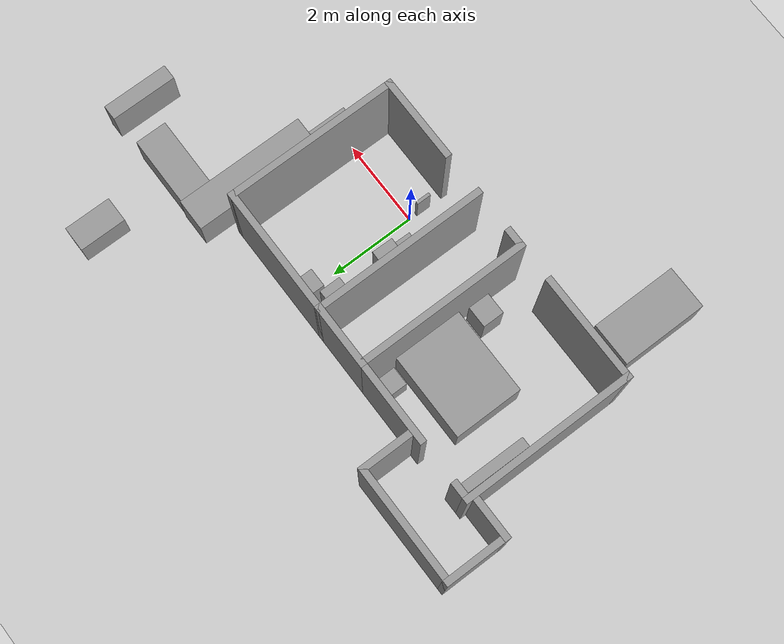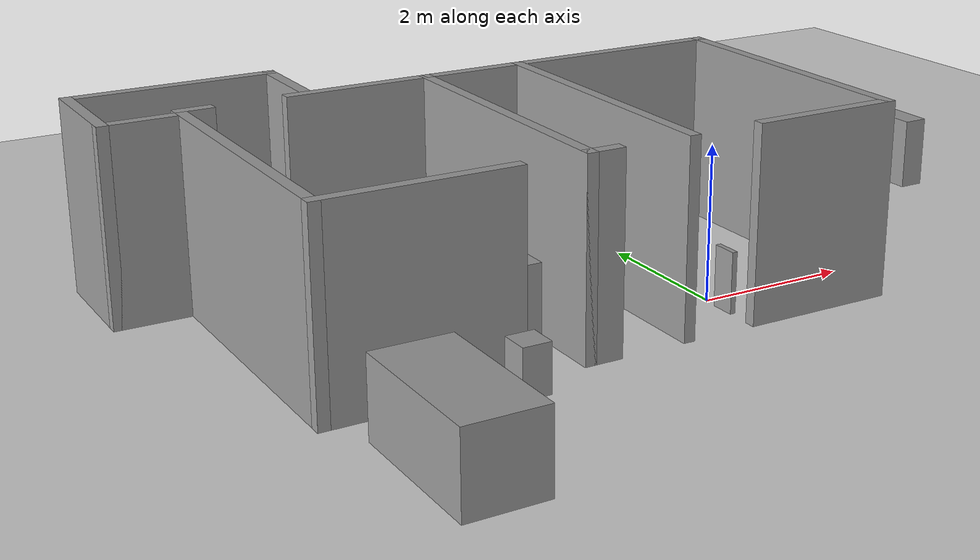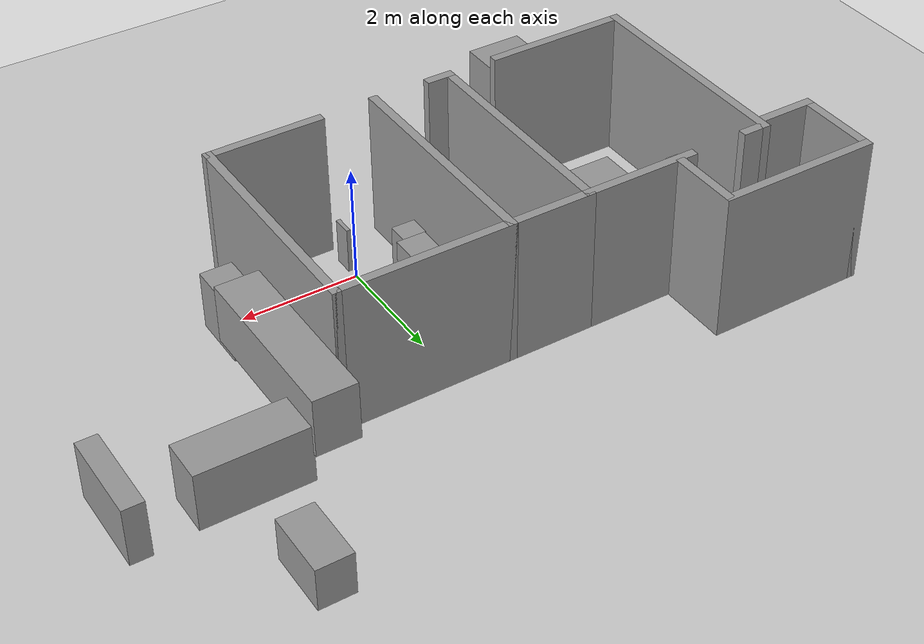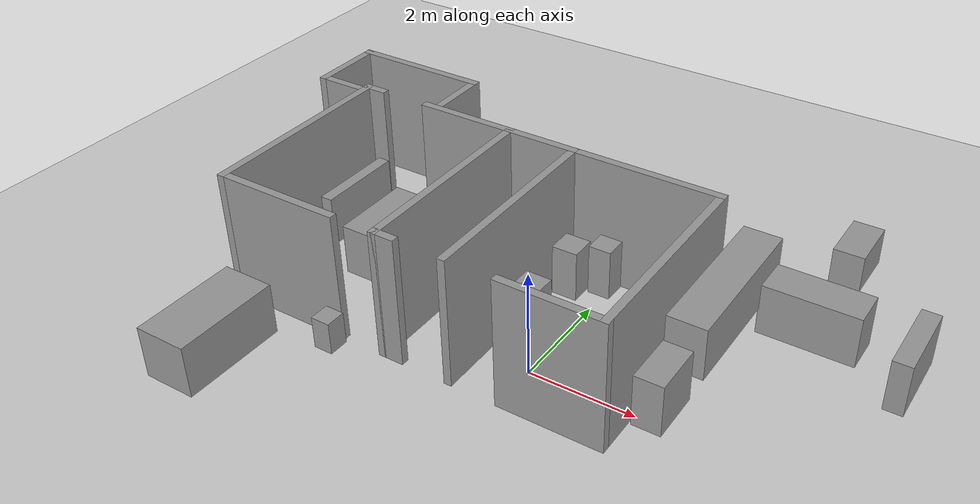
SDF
<sdf version="1.9">
 <world name="default">
  <model name="ground_plane">
   <static>true</static>
   <link name="link">
    <collision name="collision">
     <geometry><plane><normal>0 0 1</normal><size>100 100</size></plane></geometry>
     <surface><friction><ode><mu>100</mu><mu2>50</mu2></ode></friction></surface>
    </collision>
    <visual name="visual">
     <cast_shadows>false</cast_shadows>
     <geometry><plane><normal>0 0 1</normal><size>100 100</size></plane></geometry>
     <material>
      <script><uri>file://media/materials/scripts/gazebo.material</uri><name>Gazebo/Grey</name></script>
     </material>
    </visual>
   </link>
  </model>
  <model name="cma_escritorio">
   <pose>-1.8304 1.03024 0 0 0 0</pose>
   <link name="Wall_11">
    <collision name="Wall_11_Collision">
     <geometry><box><size>2 0.14999999999999999 2.5</size></box></geometry>
     <pose>0 0 1.25 0 0 0</pose>
    </collision>
    <visual name="Wall_11_Visual">
     <pose>0 0 1.25 0 0 0</pose>
     <geometry><box><size>2 0.14999999999999999 2.5</size></box></geometry>
     <material>
      <script><uri>file://media/materials/scripts/gazebo.material</uri><name>Gazebo/Grey</name></script>
      <ambient>1 1 1 1</ambient>
     </material>
    </visual>
    <pose>-1.3999999999999999 1.9299999999999999 0 0 0 3.1415899999999999</pose>
   </link>
   <link name="Wall_2">
    <collision name="Wall_2_Collision">
     <geometry><box><size>4 0.14999999999999999 2.5</size></box></geometry>
     <pose>0 0 1.25 0 0 0</pose>
    </collision>
    <visual name="Wall_2_Visual">
     <pose>0 0 1.25 0 0 0</pose>
     <geometry><box><size>4 0.14999999999999999 2.5</size></box></geometry>
     <material>
      <script><uri>file://media/materials/scripts/gazebo.material</uri><name>Gazebo/Grey</name></script>
      <ambient>1 1 1 1</ambient>
     </material>
    </visual>
    <pose>0.875 0.0050000000000000001 0 0 0 1.5708</pose>
   </link>
   <link name="Wall_25">
    <collision name="Wall_25_Collision">
     <geometry><box><size>2.5 0.14999999999999999 2.5</size></box></geometry>
     <pose>0 0 1.25 0 0 0</pose>
    </collision>
    <visual name="Wall_25_Visual">
     <pose>0 0 1.25 0 0 0</pose>
     <geometry><box><size>2.5 0.14999999999999999 2.5</size></box></geometry>
     <material>
      <script><uri>file://media/materials/scripts/gazebo.material</uri><name>Gazebo/Grey</name></script>
      <ambient>1 1 1 1</ambient>
     </material>
    </visual>
    <pose>-2.5499999999999998 -1.9299999999999999 0 0 0 3.1415899999999999</pose>
   </link>
   <link name="Wall_26">
    <collision name="Wall_26_Collision">
     <geometry><box><size>4 0.14999999999999999 2.5</size></box></geometry>
     <pose>0 0 1.25 0 0 0</pose>
    </collision>
    <visual name="Wall_26_Visual">
     <pose>0 0 1.25 0 0 0</pose>
     <geometry><box><size>4 0.14999999999999999 2.5</size></box></geometry>
     <material>
      <script><uri>file://media/materials/scripts/gazebo.material</uri><name>Gazebo/Grey</name></script>
      <ambient>1 1 1 1</ambient>
     </material>
    </visual>
    <pose>-3.7250000000000001 -0.0050000000000000001 0 0 0 1.5708</pose>
   </link>
   <link name="Wall_27">
    <collision name="Wall_27_Collision">
     <geometry><box><size>0.5 0.14999999999999999 2.5</size></box></geometry>
     <pose>0 0 1.25 0 0 0</pose>
    </collision>
    <visual name="Wall_27_Visual">
     <pose>0 0 1.25 0 0 0</pose>
     <geometry><box><size>0.5 0.14999999999999999 2.5</size></box></geometry>
     <material>
      <script><uri>file://media/materials/scripts/gazebo.material</uri><name>Gazebo/Grey</name></script>
      <ambient>1 1 1 1</ambient>
     </material>
    </visual>
    <pose>-3.5499999999999998 1.9199999999999999 0 0 0 0</pose>
   </link>
   <link name="Wall_3">
    <collision name="Wall_3_Collision">
     <geometry><box><size>3 0.14999999999999999 2.5</size></box></geometry>
     <pose>0 0 1.25 0 0 0</pose>
    </collision>
    <visual name="Wall_3_Visual">
     <pose>0 0 1.25 0 0 0</pose>
     <geometry><box><size>3 0.14999999999999999 2.5</size></box></geometry>
     <material>
      <script><uri>file://media/materials/scripts/gazebo.material</uri><name>Gazebo/Grey</name></script>
      <ambient>1 1 1 1</ambient>
     </material>
    </visual>
    <pose>2.2999999999999998 1.9299999999999999 0 0 0 0</pose>
   </link>
   <link name="Wall_4">
    <collision name="Wall_4_Collision">
     <geometry><box><size>4 0.14999999999999999 2.5</size></box></geometry>
     <pose>0 0 1.25 0 0 0</pose>
    </collision>
    <visual name="Wall_4_Visual">
     <pose>0 0 1.25 0 0 0</pose>
     <geometry><box><size>4 0.14999999999999999 2.5</size></box></geometry>
     <material>
      <script><uri>file://media/materials/scripts/gazebo.material</uri><name>Gazebo/Grey</name></script>
      <ambient>1 1 1 1</ambient>
     </material>
    </visual>
    <pose>3.7250000000000001 0.0050000000000000001 0 0 0 -1.5708</pose>
   </link>
   <link name="Wall_5">
    <collision name="Wall_5_Collision">
     <geometry><box><size>2 0.14999999999999999 2.5</size></box></geometry>
     <pose>0 0 1.25 0 0 0</pose>
    </collision>
    <visual name="Wall_5_Visual">
     <pose>0 0 1.25 0 0 0</pose>
     <geometry><box><size>2 0.14999999999999999 2.5</size></box></geometry>
     <material>
      <script><uri>file://media/materials/scripts/gazebo.material</uri><name>Gazebo/Grey</name></script>
      <ambient>1 1 1 1</ambient>
     </material>
    </visual>
    <pose>2.7999999999999998 -1.9199999999999999 0 0 0 3.1415899999999999</pose>
   </link>
   <link name="Wall_7">
    <collision name="Wall_7_Collision">
     <geometry><box><size>1.5 0.14999999999999999 2.5</size></box></geometry>
     <pose>0 0 1.25 0 0 0</pose>
    </collision>
    <visual name="Wall_7_Visual">
     <pose>0 0 1.25 0 0 0</pose>
     <geometry><box><size>1.5 0.14999999999999999 2.5</size></box></geometry>
     <material>
      <script><uri>file://media/materials/scripts/gazebo.material</uri><name>Gazebo/Grey</name></script>
      <ambient>1 1 1 1</ambient>
     </material>
    </visual>
    <pose>0.20000000000000001 1.9299999999999999 0 0 0 3.1415899999999999</pose>
   </link>
   <link name="Wall_8">
    <collision name="Wall_8_Collision">
     <geometry><box><size>4 0.14999999999999999 2.5</size></box></geometry>
     <pose>0 0 1.25 0 0 0</pose>
    </collision>
    <visual name="Wall_8_Visual">
     <pose>0 0 1.25 0 0 0</pose>
     <geometry><box><size>4 0.14999999999999999 2.5</size></box></geometry>
     <material>
      <script><uri>file://media/materials/scripts/gazebo.material</uri><name>Gazebo/Grey</name></script>
      <ambient>1 1 1 1</ambient>
     </material>
    </visual>
    <pose>-0.47499999999999998 0.0050000000000000001 0 0 0 -1.5708</pose>
   </link>
   <link name="Wall_9">
    <collision name="Wall_9_Collision">
     <geometry><box><size>0.5 0.14999999999999999 2.5</size></box></geometry>
     <pose>0 0 1.25 0 0 0</pose>
    </collision>
    <visual name="Wall_9_Visual">
     <pose>0 0 1.25 0 0 0</pose>
     <geometry><box><size>0.5 0.14999999999999999 2.5</size></box></geometry>
     <material>
      <script><uri>file://media/materials/scripts/gazebo.material</uri><name>Gazebo/Grey</name></script>
      <ambient>1 1 1 1</ambient>
     </material>
    </visual>
    <pose>-0.29999999999999999 -1.9199999999999999 0 0 0 0</pose>
   </link>
   <static>true</static>
  </model>
  <model name="cma_banheiro">
   <pose>-5.2292800000000002 3.4870999999999999 0 0 0 0</pose>
   <link name="Wall_0">
    <collision name="Wall_0_Collision">
     <geometry><box><size>1 0.14999999999999999 2.5</size></box></geometry>
     <pose>0 0 1.25 0 0 0</pose>
    </collision>
    <visual name="Wall_0_Visual">
     <pose>0 0 1.25 0 0 0</pose>
     <geometry><box><size>1 0.14999999999999999 2.5</size></box></geometry>
     <material>
      <script><uri>file://media/materials/scripts/gazebo.material</uri><name>Gazebo/Grey</name></script>
      <ambient>1 1 1 1</ambient>
     </material>
    </visual>
    <pose>-0.875 -0.67500000000000004 0 0 0 3.1415899999999999</pose>
   </link>
   <link name="Wall_1">
    <collision name="Wall_1_Collision">
     <geometry><box><size>1.5 0.14999999999999999 2.5</size></box></geometry>
     <pose>0 0 1.25 0 0 0</pose>
    </collision>
    <visual name="Wall_1_Visual">
     <pose>0 0 1.25 0 0 0</pose>
     <geometry><box><size>1.5 0.14999999999999999 2.5</size></box></geometry>
     <material>
      <script><uri>file://media/materials/scripts/gazebo.material</uri><name>Gazebo/Grey</name></script>
      <ambient>1 1 1 1</ambient>
     </material>
    </visual>
    <pose>-1.3 0 0 0 0 1.5708</pose>
   </link>
   <link name="Wall_2">
    <collision name="Wall_2_Collision">
     <geometry><box><size>2.75 0.14999999999999999 2.5</size></box></geometry>
     <pose>0 0 1.25 0 0 0</pose>
    </collision>
    <visual name="Wall_2_Visual">
     <pose>0 0 1.25 0 0 0</pose>
     <geometry><box><size>2.75 0.14999999999999999 2.5</size></box></geometry>
     <material>
      <script><uri>file://media/materials/scripts/gazebo.material</uri><name>Gazebo/Grey</name></script>
      <ambient>1 1 1 1</ambient>
     </material>
    </visual>
    <pose>0 0.67500000000000004 0 0 0 0</pose>
   </link>
   <link name="Wall_4">
    <collision name="Wall_4_Collision">
     <geometry><box><size>1.25 0.14999999999999999 2.5</size></box></geometry>
     <pose>0 0 1.25 0 0 0</pose>
    </collision>
    <visual name="Wall_4_Visual">
     <pose>0 0 1.25 0 0 0</pose>
     <geometry><box><size>1.25 0.14999999999999999 2.5</size></box></geometry>
     <material>
      <script><uri>file://media/materials/scripts/gazebo.material</uri><name>Gazebo/Grey</name></script>
      <ambient>1 1 1 1</ambient>
     </material>
    </visual>
    <pose>1.3 0.125 0 0 0 -1.5708</pose>
   </link>
   <static>true</static>
  </model>
  <model name="cma_gaveteiro_pequeno_0">
   <link name="link_0">
    <pose>0.25617400000000001 1.2505500000000001 0.5 0 0 0</pose>
    <inertial>
     <mass>0.18718599999999999</mass>
     <inertia>
      <ixx>0.018509999999999999</ixx>
      <ixy>0</ixy>
      <ixz>0</ixz>
      <iyy>0.018527600000000002</iyy>
      <iyz>0</iyz>
      <izz>0.00583981</izz>
     </inertia>
    </inertial>
    <visual name="visual">
     <geometry><box><size>0.43331700000000001 0.432002 1</size></box></geometry>
     <material>
      <lighting>true</lighting>
      <script><uri>file://media/materials/scripts/gazebo.material</uri><name>Gazebo/Grey</name></script>
      <ambient>0.300000012 0.300000012 0.300000012 1</ambient>
      <diffuse>0.699999988 0.699999988 0.699999988 1</diffuse>
      <specular>0.00999999978 0.00999999978 0.00999999978 1</specular>
      <emissive>0 0 0 1</emissive>
     </material>
    </visual>
    <collision name="collision">
     <geometry><box><size>0.43331700000000001 0.432002 1</size></box></geometry>
     <surface>
      <friction>
       <ode><mu>1</mu><mu2>1</mu2><fdir1>0 0 0</fdir1><slip1>0</slip1><slip2>0</slip2></ode>
       <torsional>
        <coefficient>1</coefficient>
        <patch_radius>0</patch_radius>
        <surface_radius>0</surface_radius>
        <use_patch_radius>true</use_patch_radius>
        <ode><slip>0</slip></ode>
       </torsional>
      </friction>
      <bounce><restitution_coefficient>0</restitution_coefficient><threshold>1000000</threshold></bounce>
      <contact>
       <collide_without_contact>false</collide_without_contact>
       <collide_without_contact_bitmask>1</collide_without_contact_bitmask>
       <collide_bitmask>1</collide_bitmask>
       <ode>
        <soft_cfm>0</soft_cfm>
        <soft_erp>0.20000000000000001</soft_erp>
        <kp>10000000000000</kp>
        <kd>1</kd>
        <max_vel>0.01</max_vel>
        <min_depth>0</min_depth>
       </ode>
       <bullet>
        <split_impulse>true</split_impulse>
        <split_impulse_penetration_threshold>-0.01</split_impulse_penetration_threshold>
        <soft_cfm>0</soft_cfm>
        <soft_erp>0.20000000000000001</soft_erp>
        <kp>10000000000000</kp>
        <kd>1</kd>
       </bullet>
      </contact>
     </surface>
    </collision>
   </link>
   <static>false</static>
   <pose>-0.33607799999999999 1.39513 -6.9999999999999999e-06 6.999999999999999e-06 5.169878828456423e-26 -8.2999999999999998e-05</pose>
  </model>
  <model name="cma_gaveteiro">
   <link name="link_0">
    <pose>0 3.9999999999999998e-06 0 0 0 0</pose>
    <inertial>
     <mass>0.245086</mass>
     <inertia>
      <ixx>0.025418</ixx>
      <ixy>0</ixy>
      <ixz>0</ixz>
      <iyy>0.025441100000000001</iyy>
      <iyz>0</iyz>
      <izz>0.010011300000000001</izz>
     </inertia>
    </inertial>
    <visual name="visual">
     <geometry><box><size>0.49565700000000001 0.49449100000000001 1</size></box></geometry>
     <material>
      <lighting>true</lighting>
      <script><uri>file://media/materials/scripts/gazebo.material</uri><name>Gazebo/Grey</name></script>
      <ambient>0.300000012 0.300000012 0.300000012 1</ambient>
      <diffuse>0.699999988 0.699999988 0.699999988 1</diffuse>
      <specular>0.00999999978 0.00999999978 0.00999999978 1</specular>
      <emissive>0 0 0 1</emissive>
     </material>
    </visual>
    <collision name="collision">
     <geometry><box><size>0.49565700000000001 0.49449100000000001 1</size></box></geometry>
     <surface>
      <friction>
       <ode><mu>1</mu><mu2>1</mu2><fdir1>0 0 0</fdir1><slip1>0</slip1><slip2>0</slip2></ode>
       <torsional>
        <coefficient>1</coefficient>
        <patch_radius>0</patch_radius>
        <surface_radius>0</surface_radius>
        <use_patch_radius>true</use_patch_radius>
        <ode><slip>0</slip></ode>
       </torsional>
      </friction>
      <bounce><restitution_coefficient>0</restitution_coefficient><threshold>1000000</threshold></bounce>
      <contact>
       <collide_without_contact>false</collide_without_contact>
       <collide_without_contact_bitmask>1</collide_without_contact_bitmask>
       <collide_bitmask>1</collide_bitmask>
       <ode>
        <soft_cfm>0</soft_cfm>
        <soft_erp>0.20000000000000001</soft_erp>
        <kp>10000000000000</kp>
        <kd>1</kd>
        <max_vel>0.01</max_vel>
        <min_depth>0</min_depth>
       </ode>
       <bullet>
        <split_impulse>true</split_impulse>
        <split_impulse_penetration_threshold>-0.01</split_impulse_penetration_threshold>
        <soft_cfm>0</soft_cfm>
        <soft_erp>0.20000000000000001</soft_erp>
        <kp>10000000000000</kp>
        <kd>1</kd>
       </bullet>
      </contact>
     </surface>
    </collision>
   </link>
   <static>false</static>
   <pose>-0.59198799999999996 2.32619 0.49999700000000002 6.000000000000001e-06 -6.000000000000001e-06 0.00053200000000000014</pose>
  </model>
  <model name="cma_gaveteiro_0">
   <link name="link_0">
    <pose>0 3.9999999999999998e-06 0 0 0 0</pose>
    <inertial>
     <mass>0.245086</mass>
     <inertia>
      <ixx>0.025418</ixx>
      <ixy>0</ixy>
      <ixz>0</ixz>
      <iyy>0.025441100000000001</iyy>
      <iyz>0</iyz>
      <izz>0.010011300000000001</izz>
     </inertia>
    </inertial>
    <visual name="visual">
     <geometry><box><size>0.49565700000000001 0.49449100000000001 1</size></box></geometry>
     <material>
      <lighting>true</lighting>
      <script><uri>file://media/materials/scripts/gazebo.material</uri><name>Gazebo/Grey</name></script>
      <ambient>0.300000012 0.300000012 0.300000012 1</ambient>
      <diffuse>0.699999988 0.699999988 0.699999988 1</diffuse>
      <specular>0.00999999978 0.00999999978 0.00999999978 1</specular>
      <emissive>0 0 0 1</emissive>
     </material>
    </visual>
    <collision name="collision">
     <geometry><box><size>0.49565700000000001 0.49449100000000001 1</size></box></geometry>
     <surface>
      <friction>
       <ode><mu>1</mu><mu2>1</mu2><fdir1>0 0 0</fdir1><slip1>0</slip1><slip2>0</slip2></ode>
       <torsional>
        <coefficient>1</coefficient>
        <patch_radius>0</patch_radius>
        <surface_radius>0</surface_radius>
        <use_patch_radius>true</use_patch_radius>
        <ode><slip>0</slip></ode>
       </torsional>
      </friction>
      <bounce><restitution_coefficient>0</restitution_coefficient><threshold>1000000</threshold></bounce>
      <contact>
       <collide_without_contact>false</collide_without_contact>
       <collide_without_contact_bitmask>1</collide_without_contact_bitmask>
       <collide_bitmask>1</collide_bitmask>
       <ode>
        <soft_cfm>0</soft_cfm>
        <soft_erp>0.20000000000000001</soft_erp>
        <kp>10000000000000</kp>
        <kd>1</kd>
        <max_vel>0.01</max_vel>
        <min_depth>0</min_depth>
       </ode>
       <bullet>
        <split_impulse>true</split_impulse>
        <split_impulse_penetration_threshold>-0.01</split_impulse_penetration_threshold>
        <soft_cfm>0</soft_cfm>
        <soft_erp>0.20000000000000001</soft_erp>
        <kp>10000000000000</kp>
        <kd>1</kd>
       </bullet>
      </contact>
     </surface>
    </collision>
   </link>
   <static>false</static>
   <pose>-0.57788200000000001 0.98407100000000003 0.49999900000000003 -9.9999999999999995e-07 5.0000000000000004e-06 -0.014332000000000001</pose>
  </model>
  <model name="cma_sofa2">
   <link name="link_0">
    <pose>-4.6680000000000001 -2.0060099999999998 0.5 0 0 0</pose>
    <inertial>
     <mass>1.9868300000000001</mass>
     <inertia>
      <ixx>0.81914900000000002</ixx>
      <ixy>0</ixy>
      <ixz>0</ixz>
      <iyy>0.33113799999999999</iyy>
      <iyz>0</iyz>
      <izz>0.81914900000000002</izz>
     </inertia>
    </inertial>
    <visual name="visual">
     <geometry><box><size>1 1.98682 1</size></box></geometry>
     <material>
      <lighting>true</lighting>
      <script><uri>file://media/materials/scripts/gazebo.material</uri><name>Gazebo/Grey</name></script>
      <ambient>0.300000012 0.300000012 0.300000012 1</ambient>
      <diffuse>0.699999988 0.699999988 0.699999988 1</diffuse>
      <specular>0.00999999978 0.00999999978 0.00999999978 1</specular>
      <emissive>0 0 0 1</emissive>
     </material>
    </visual>
    <collision name="collision">
     <geometry><box><size>1 1.98682 1</size></box></geometry>
     <surface>
      <friction>
       <ode><mu>1</mu><mu2>1</mu2><fdir1>0 0 0</fdir1><slip1>0</slip1><slip2>0</slip2></ode>
       <torsional>
        <coefficient>1</coefficient>
        <patch_radius>0</patch_radius>
        <surface_radius>0</surface_radius>
        <use_patch_radius>true</use_patch_radius>
        <ode><slip>0</slip></ode>
       </torsional>
      </friction>
      <bounce><restitution_coefficient>0</restitution_coefficient><threshold>1000000</threshold></bounce>
      <contact>
       <collide_without_contact>false</collide_without_contact>
       <collide_without_contact_bitmask>1</collide_without_contact_bitmask>
       <collide_bitmask>1</collide_bitmask>
       <ode>
        <soft_cfm>0</soft_cfm>
        <soft_erp>0.20000000000000001</soft_erp>
        <kp>10000000000000</kp>
        <kd>1</kd>
        <max_vel>0.01</max_vel>
        <min_depth>0</min_depth>
       </ode>
       <bullet>
        <split_impulse>true</split_impulse>
        <split_impulse_penetration_threshold>-0.01</split_impulse_penetration_threshold>
        <soft_cfm>0</soft_cfm>
        <soft_erp>0.20000000000000001</soft_erp>
        <kp>10000000000000</kp>
        <kd>1</kd>
       </bullet>
      </contact>
     </surface>
    </collision>
   </link>
   <static>false</static>
   <pose>-0.095333000000000001 -0.40780699999999998 -1.2999999999999999e-05 -2.0194839173748778e-28 3.0000000000000001e-06 9.9999999999999995e-07</pose>
  </model>
  <model name="cma_apoio_s">
   <link name="link_1">
    <pose>-1.9376 -3.4655100000000001 0.5 0 0 0</pose>
    <inertial>
     <mass>0.087846300000000002</mass>
     <inertia>
      <ixx>0.0039269600000000002</ixx>
      <ixy>0</ixy>
      <ixz>0</ixz>
      <iyy>0.0038535599999999998</iyy>
      <iyz>0</iyz>
      <izz>0.0020587000000000001</izz>
     </inertia>
    </inertial>
    <visual name="visual">
     <geometry><box><size>0.36822300000000002 0.38159199999999999 0.62511799999999995</size></box></geometry>
     <material>
      <lighting>true</lighting>
      <script><uri>file://media/materials/scripts/gazebo.material</uri><name>Gazebo/Grey</name></script>
      <ambient>0.300000012 0.300000012 0.300000012 1</ambient>
      <diffuse>0.699999988 0.699999988 0.699999988 1</diffuse>
      <specular>0.00999999978 0.00999999978 0.00999999978 1</specular>
      <emissive>0 0 0 1</emissive>
     </material>
    </visual>
    <collision name="collision">
     <geometry><box><size>0.36822300000000002 0.38159199999999999 0.62511799999999995</size></box></geometry>
     <surface>
      <friction>
       <ode><mu>1</mu><mu2>1</mu2><fdir1>0 0 0</fdir1><slip1>0</slip1><slip2>0</slip2></ode>
       <torsional>
        <coefficient>1</coefficient>
        <patch_radius>0</patch_radius>
        <surface_radius>0</surface_radius>
        <use_patch_radius>true</use_patch_radius>
        <ode><slip>0</slip></ode>
       </torsional>
      </friction>
      <bounce><restitution_coefficient>0</restitution_coefficient><threshold>1000000</threshold></bounce>
      <contact>
       <collide_without_contact>false</collide_without_contact>
       <collide_without_contact_bitmask>1</collide_without_contact_bitmask>
       <collide_bitmask>1</collide_bitmask>
       <ode>
        <soft_cfm>0</soft_cfm>
        <soft_erp>0.20000000000000001</soft_erp>
        <kp>10000000000000</kp>
        <kd>1</kd>
        <max_vel>0.01</max_vel>
        <min_depth>0</min_depth>
       </ode>
       <bullet>
        <split_impulse>true</split_impulse>
        <split_impulse_penetration_threshold>-0.01</split_impulse_penetration_threshold>
        <soft_cfm>0</soft_cfm>
        <soft_erp>0.20000000000000001</soft_erp>
        <kp>10000000000000</kp>
        <kd>1</kd>
       </bullet>
      </contact>
     </surface>
    </collision>
   </link>
   <static>false</static>
   <pose>-1.3079000000000001 2.27034 -0.187469 -1.2000000000000002e-05 -9.0000000000000002e-06 -0.0011650000000000005</pose>
  </model>
  <model name="cma_cama_c_0">
   <link name="link_0">
    <pose>5.0000000000000004e-06 -3.9999999999999998e-06 0 0 0 0</pose>
    <inertial>
     <mass>3.1835800000000001</mass>
     <inertia>
      <ixx>0.93486199999999997</ixx>
      <ixy>0</ixy>
      <ixz>0</ixz>
      <iyy>1.3306899999999999</iyy>
      <iyz>0</iyz>
      <izz>1.7349600000000001</izz>
     </inertia>
    </inertial>
    <visual name="visual">
     <geometry><box><size>2.0039400000000001 1.58866 1</size></box></geometry>
     <material>
      <lighting>true</lighting>
      <script><uri>file://media/materials/scripts/gazebo.material</uri><name>Gazebo/Grey</name></script>
      <ambient>0.300000012 0.300000012 0.300000012 1</ambient>
      <diffuse>0.699999988 0.699999988 0.699999988 1</diffuse>
      <specular>0.00999999978 0.00999999978 0.00999999978 1</specular>
      <emissive>0 0 0 1</emissive>
     </material>
    </visual>
    <collision name="collision">
     <geometry><box><size>2.0039400000000001 1.58866 1</size></box></geometry>
     <surface>
      <friction>
       <ode><mu>1</mu><mu2>1</mu2><fdir1>0 0 0</fdir1><slip1>0</slip1><slip2>0</slip2></ode>
       <torsional>
        <coefficient>1</coefficient>
        <patch_radius>0</patch_radius>
        <surface_radius>0</surface_radius>
        <use_patch_radius>true</use_patch_radius>
        <ode><slip>0</slip></ode>
       </torsional>
      </friction>
      <bounce><restitution_coefficient>0</restitution_coefficient><threshold>1000000</threshold></bounce>
      <contact>
       <collide_without_contact>false</collide_without_contact>
       <collide_without_contact_bitmask>1</collide_without_contact_bitmask>
       <collide_bitmask>1</collide_bitmask>
       <ode>
        <soft_cfm>0</soft_cfm>
        <soft_erp>0.20000000000000001</soft_erp>
        <kp>10000000000000</kp>
        <kd>1</kd>
        <max_vel>0.01</max_vel>
        <min_depth>0</min_depth>
       </ode>
       <bullet>
        <split_impulse>true</split_impulse>
        <split_impulse_penetration_threshold>-0.01</split_impulse_penetration_threshold>
        <soft_cfm>0</soft_cfm>
        <soft_erp>0.20000000000000001</soft_erp>
        <kp>10000000000000</kp>
        <kd>1</kd>
       </bullet>
      </contact>
     </surface>
    </collision>
   </link>
   <static>false</static>
   <pose>-3.3823799999999999 1.3878699999999999 0.5 0 0 -2.0000000000000003e-06</pose>
  </model>
  <model name="cma_bau_s_0">
   <link name="link_1">
    <pose>0.109594 0.27229300000000001 0 0 0 0</pose>
    <inertial>
     <mass>0.12547900000000001</mass>
     <inertia>
      <ixx>0.0064194300000000003</ixx>
      <ixy>0</ixy>
      <ixz>0</ixz>
      <iyy>0.0059753999999999996</iyy>
      <iyz>0</iyz>
      <izz>0.0042208499999999999</izz>
     </inertia>
    </inertial>
    <visual name="visual">
     <geometry><box><size>0.42496400000000001 0.47228300000000001 0.62511799999999995</size></box></geometry>
     <material>
      <lighting>true</lighting>
      <script><uri>file://media/materials/scripts/gazebo.material</uri><name>Gazebo/Grey</name></script>
      <ambient>0.300000012 0.300000012 0.300000012 1</ambient>
      <diffuse>0.699999988 0.699999988 0.699999988 1</diffuse>
      <specular>0.00999999978 0.00999999978 0.00999999978 1</specular>
      <emissive>0 0 0 1</emissive>
     </material>
    </visual>
    <collision name="collision">
     <geometry><box><size>0.42496400000000001 0.47228300000000001 0.62511799999999995</size></box></geometry>
     <surface>
      <friction>
       <ode><mu>1</mu><mu2>1</mu2><fdir1>0 0 0</fdir1><slip1>0</slip1><slip2>0</slip2></ode>
       <torsional>
        <coefficient>1</coefficient>
        <patch_radius>0</patch_radius>
        <surface_radius>0</surface_radius>
        <use_patch_radius>true</use_patch_radius>
        <ode><slip>0</slip></ode>
       </torsional>
      </friction>
      <bounce><restitution_coefficient>0</restitution_coefficient><threshold>1000000</threshold></bounce>
      <contact>
       <collide_without_contact>false</collide_without_contact>
       <collide_without_contact_bitmask>1</collide_without_contact_bitmask>
       <collide_bitmask>1</collide_bitmask>
       <ode>
        <soft_cfm>0</soft_cfm>
        <soft_erp>0.20000000000000001</soft_erp>
        <kp>10000000000000</kp>
        <kd>1</kd>
        <max_vel>0.01</max_vel>
        <min_depth>0</min_depth>
       </ode>
       <bullet>
        <split_impulse>true</split_impulse>
        <split_impulse_penetration_threshold>-0.01</split_impulse_penetration_threshold>
        <soft_cfm>0</soft_cfm>
        <soft_erp>0.20000000000000001</soft_erp>
        <kp>10000000000000</kp>
        <kd>1</kd>
       </bullet>
      </contact>
     </surface>
    </collision>
   </link>
   <static>false</static>
   <pose>-2.7651500000000002 2.2427899999999998 0.31255899999999998 0 0 -0.00012999999999999999</pose>
  </model>
  <model name="cma_gaveteiro_1">
   <link name="link_0">
    <pose>0 3.9999999999999998e-06 0 0 0 0</pose>
    <inertial>
     <mass>0.245086</mass>
     <inertia>
      <ixx>0.025418</ixx>
      <ixy>0</ixy>
      <ixz>0</ixz>
      <iyy>0.025441100000000001</iyy>
      <iyz>0</iyz>
      <izz>0.010011300000000001</izz>
     </inertia>
    </inertial>
    <visual name="visual">
     <geometry><box><size>0.49565700000000001 0.49449100000000001 1</size></box></geometry>
     <material>
      <lighting>true</lighting>
      <script><uri>file://media/materials/scripts/gazebo.material</uri><name>Gazebo/Grey</name></script>
      <ambient>0.300000012 0.300000012 0.300000012 1</ambient>
      <diffuse>0.699999988 0.699999988 0.699999988 1</diffuse>
      <specular>0.00999999978 0.00999999978 0.00999999978 1</specular>
      <emissive>0 0 0 1</emissive>
     </material>
    </visual>
    <collision name="collision">
     <geometry><box><size>0.49565700000000001 0.49449100000000001 1</size></box></geometry>
     <surface>
      <friction>
       <ode><mu>1</mu><mu2>1</mu2><fdir1>0 0 0</fdir1><slip1>0</slip1><slip2>0</slip2></ode>
       <torsional>
        <coefficient>1</coefficient>
        <patch_radius>0</patch_radius>
        <surface_radius>0</surface_radius>
        <use_patch_radius>true</use_patch_radius>
        <ode><slip>0</slip></ode>
       </torsional>
      </friction>
      <bounce><restitution_coefficient>0</restitution_coefficient><threshold>1000000</threshold></bounce>
      <contact>
       <collide_without_contact>false</collide_without_contact>
       <collide_without_contact_bitmask>1</collide_without_contact_bitmask>
       <collide_bitmask>1</collide_bitmask>
       <ode>
        <soft_cfm>0</soft_cfm>
        <soft_erp>0.20000000000000001</soft_erp>
        <kp>10000000000000</kp>
        <kd>1</kd>
        <max_vel>0.01</max_vel>
        <min_depth>0</min_depth>
       </ode>
       <bullet>
        <split_impulse>true</split_impulse>
        <split_impulse_penetration_threshold>-0.01</split_impulse_penetration_threshold>
        <soft_cfm>0</soft_cfm>
        <soft_erp>0.20000000000000001</soft_erp>
        <kp>10000000000000</kp>
        <kd>1</kd>
       </bullet>
      </contact>
     </surface>
    </collision>
   </link>
   <static>false</static>
   <pose>-2.68858 0.13162699999999999 0.499998 7.9999999999999996e-06 1.0339757656912846e-25 -0.00020699999999999999</pose>
  </model>
  <model name="cma_armario_6">
   <link name="link_0">
    <pose>1.3215699999999999 0.88517800000000002 0.5 0 0 0</pose>
    <inertial>
     <mass>0.40237600000000001</mass>
     <inertia>
      <ixx>0.0353686</ixx>
      <ixy>0</ixy>
      <ixz>0</ixz>
      <iyy>0.13261600000000001</iyy>
      <iyz>0</iyz>
      <izz>0.100922</izz>
     </inertia>
    </inertial>
    <visual name="visual">
     <geometry><box><size>1.7187699999999999 0.234069 1</size></box></geometry>
     <material>
      <lighting>true</lighting>
      <script><uri>file://media/materials/scripts/gazebo.material</uri><name>Gazebo/Grey</name></script>
      <ambient>0.300000012 0.300000012 0.300000012 1</ambient>
      <diffuse>0.699999988 0.699999988 0.699999988 1</diffuse>
      <specular>0.00999999978 0.00999999978 0.00999999978 1</specular>
      <emissive>0 0 0 1</emissive>
     </material>
    </visual>
    <collision name="collision">
     <geometry><box><size>1.7187699999999999 0.234069 1</size></box></geometry>
     <surface>
      <friction>
       <ode><mu>1</mu><mu2>1</mu2><fdir1>0 0 0</fdir1><slip1>0</slip1><slip2>0</slip2></ode>
       <torsional>
        <coefficient>1</coefficient>
        <patch_radius>0</patch_radius>
        <surface_radius>0</surface_radius>
        <use_patch_radius>true</use_patch_radius>
        <ode><slip>0</slip></ode>
       </torsional>
      </friction>
      <bounce><restitution_coefficient>0</restitution_coefficient><threshold>1000000</threshold></bounce>
      <contact>
       <collide_without_contact>false</collide_without_contact>
       <collide_without_contact_bitmask>1</collide_without_contact_bitmask>
       <collide_bitmask>1</collide_bitmask>
       <ode>
        <soft_cfm>0</soft_cfm>
        <soft_erp>0.20000000000000001</soft_erp>
        <kp>10000000000000</kp>
        <kd>1</kd>
        <max_vel>0.01</max_vel>
        <min_depth>0</min_depth>
       </ode>
       <bullet>
        <split_impulse>true</split_impulse>
        <split_impulse_penetration_threshold>-0.01</split_impulse_penetration_threshold>
        <soft_cfm>0</soft_cfm>
        <soft_erp>0.20000000000000001</soft_erp>
        <kp>10000000000000</kp>
        <kd>1</kd>
       </bullet>
      </contact>
     </surface>
    </collision>
   </link>
   <static>false</static>
   <pose>-4.3864900000000002 0.68753299999999995 9.9999999999999995e-07 -2.0000000000000003e-06 0 1.5659099999999999</pose>
  </model>
  <model name="cma_gaveteiro_pequeno_e">
   <link name="link_1">
    <pose>9.9999999999999995e-07 -3.0000000000000001e-06 0 0 0 0</pose>
    <inertial>
     <mass>0.14553199999999999</mass>
     <inertia>
      <ixx>0.0136813</ixx>
      <ixy>0</ixy>
      <ixz>0</ixz>
      <iyy>0.0141327</iyy>
      <iyz>0</iyz>
      <izz>0.0035586599999999999</izz>
     </inertia>
    </inertial>
    <visual name="visual">
     <geometry><box><size>0.40660000000000002 0.35791800000000001 1</size></box></geometry>
     <material>
      <lighting>true</lighting>
      <script><uri>file://media/materials/scripts/gazebo.material</uri><name>Gazebo/Grey</name></script>
      <ambient>0.300000012 0.300000012 0.300000012 1</ambient>
      <diffuse>0.699999988 0.699999988 0.699999988 1</diffuse>
      <specular>0.00999999978 0.00999999978 0.00999999978 1</specular>
      <emissive>0 0 0 1</emissive>
     </material>
    </visual>
    <collision name="collision">
     <geometry><box><size>0.40660000000000002 0.35791800000000001 1</size></box></geometry>
     <surface>
      <friction>
       <ode><mu>1</mu><mu2>1</mu2><fdir1>0 0 0</fdir1><slip1>0</slip1><slip2>0</slip2></ode>
       <torsional>
        <coefficient>1</coefficient>
        <patch_radius>0</patch_radius>
        <surface_radius>0</surface_radius>
        <use_patch_radius>true</use_patch_radius>
        <ode><slip>0</slip></ode>
       </torsional>
      </friction>
      <bounce><restitution_coefficient>0</restitution_coefficient><threshold>1000000</threshold></bounce>
      <contact>
       <collide_without_contact>false</collide_without_contact>
       <collide_without_contact_bitmask>1</collide_without_contact_bitmask>
       <collide_bitmask>1</collide_bitmask>
       <ode>
        <soft_cfm>0</soft_cfm>
        <soft_erp>0.20000000000000001</soft_erp>
        <kp>10000000000000</kp>
        <kd>1</kd>
        <max_vel>0.01</max_vel>
        <min_depth>0</min_depth>
       </ode>
       <bullet>
        <split_impulse>true</split_impulse>
        <split_impulse_penetration_threshold>-0.01</split_impulse_penetration_threshold>
        <soft_cfm>0</soft_cfm>
        <soft_erp>0.20000000000000001</soft_erp>
        <kp>10000000000000</kp>
        <kd>1</kd>
       </bullet>
      </contact>
     </surface>
    </collision>
   </link>
   <static>false</static>
   <pose>-0.65294700000000006 0.55890300000000004 0.49999900000000003 3.0000000000000001e-06 6.999999999999999e-06 -0.014330000000000004</pose>
  </model>
  <model name="cma_pe_mesa2">
   <link name="link_0">
    <pose>-9.9999999999999995e-07 0 0 0 0 0</pose>
    <inertial>
     <mass>0.0184993</mass>
     <inertia>
      <ixx>0.0011378499999999999</ixx>
      <ixy>0</ixy>
      <ixz>0</ixz>
      <iyy>0.00097356799999999996</iyy>
      <iyz>0</iyz>
      <izz>0.000179385</izz>
     </inertia>
    </inertial>
    <visual name="visual">
     <geometry><box><size>0.070004999999999998 0.33385999999999999 0.79159199999999996</size></box></geometry>
     <material>
      <lighting>true</lighting>
      <script><uri>file://media/materials/scripts/gazebo.material</uri><name>Gazebo/Grey</name></script>
      <ambient>0.300000012 0.300000012 0.300000012 1</ambient>
      <diffuse>0.699999988 0.699999988 0.699999988 1</diffuse>
      <specular>0.00999999978 0.00999999978 0.00999999978 1</specular>
      <emissive>0 0 0 1</emissive>
     </material>
    </visual>
    <collision name="collision">
     <geometry><box><size>0.070004999999999998 0.33385999999999999 0.79159199999999996</size></box></geometry>
     <surface>
      <friction>
       <ode><mu>1</mu><mu2>1</mu2><fdir1>0 0 0</fdir1><slip1>0</slip1><slip2>0</slip2></ode>
       <torsional>
        <coefficient>1</coefficient>
        <patch_radius>0</patch_radius>
        <surface_radius>0</surface_radius>
        <use_patch_radius>true</use_patch_radius>
        <ode><slip>0</slip></ode>
       </torsional>
      </friction>
      <bounce><restitution_coefficient>0</restitution_coefficient><threshold>1000000</threshold></bounce>
      <contact>
       <collide_without_contact>false</collide_without_contact>
       <collide_without_contact_bitmask>1</collide_without_contact_bitmask>
       <collide_bitmask>1</collide_bitmask>
       <ode>
        <soft_cfm>0</soft_cfm>
        <soft_erp>0.20000000000000001</soft_erp>
        <kp>10000000000000</kp>
        <kd>1</kd>
        <max_vel>0.01</max_vel>
        <min_depth>0</min_depth>
       </ode>
       <bullet>
        <split_impulse>true</split_impulse>
        <split_impulse_penetration_threshold>-0.01</split_impulse_penetration_threshold>
        <soft_cfm>0</soft_cfm>
        <soft_erp>0.20000000000000001</soft_erp>
        <kp>10000000000000</kp>
        <kd>1</kd>
       </bullet>
      </contact>
     </surface>
    </collision>
   </link>
   <static>false</static>
   <pose>0.0086339999999999993 -0.34209400000000001 0.39579599999999998 0 0 -0.00079200000000000006</pose>
  </model>
  <model name="cma_armario_coz_190x70cm">
   <link name="link_0">
    <pose>5.2095799999999999 2.97661 0.5 0 0 -1.5706800000000001</pose>
    <inertial>
     <mass>1.2966</mass>
     <inertia>
      <ixx>0.45447700000000002</ixx>
      <ixy>0</ixy>
      <ixz>0</ixz>
      <iyy>0.16470599999999999</iyy>
      <iyz>0</iyz>
      <izz>0.403084</izz>
     </inertia>
    </inertial>
    <visual name="visual">
     <geometry><box><size>0.72418400000000005 1.7905800000000001 1</size></box></geometry>
     <material>
      <lighting>true</lighting>
      <script><uri>file://media/materials/scripts/gazebo.material</uri><name>Gazebo/Grey</name></script>
      <ambient>0.300000012 0.300000012 0.300000012 1</ambient>
      <diffuse>0.699999988 0.699999988 0.699999988 1</diffuse>
      <specular>0.00999999978 0.00999999978 0.00999999978 1</specular>
      <emissive>0 0 0 1</emissive>
     </material>
    </visual>
    <collision name="collision">
     <geometry><box><size>0.72418400000000005 1.7905800000000001 1</size></box></geometry>
     <surface>
      <friction>
       <ode><mu>1</mu><mu2>1</mu2><fdir1>0 0 0</fdir1><slip1>0</slip1><slip2>0</slip2></ode>
       <torsional>
        <coefficient>1</coefficient>
        <patch_radius>0</patch_radius>
        <surface_radius>0</surface_radius>
        <use_patch_radius>true</use_patch_radius>
        <ode><slip>0</slip></ode>
       </torsional>
      </friction>
      <bounce><restitution_coefficient>0</restitution_coefficient><threshold>1000000</threshold></bounce>
      <contact>
       <collide_without_contact>false</collide_without_contact>
       <collide_without_contact_bitmask>1</collide_without_contact_bitmask>
       <collide_bitmask>1</collide_bitmask>
       <ode>
        <soft_cfm>0</soft_cfm>
        <soft_erp>0.20000000000000001</soft_erp>
        <kp>10000000000000</kp>
        <kd>1</kd>
        <max_vel>0.01</max_vel>
        <min_depth>0</min_depth>
       </ode>
       <bullet>
        <split_impulse>true</split_impulse>
        <split_impulse_penetration_threshold>-0.01</split_impulse_penetration_threshold>
        <soft_cfm>0</soft_cfm>
        <soft_erp>0.20000000000000001</soft_erp>
        <kp>10000000000000</kp>
        <kd>1</kd>
       </bullet>
      </contact>
     </surface>
    </collision>
   </link>
   <model name="cma_armario_coz_100x50cm">
    <link name="link_0">
     <pose>-3.0000000000000001e-06 -3.0000000000000001e-06 0 0 0 0</pose>
     <inertial>
      <mass>0.53619300000000003</mass>
      <inertia>
       <ixx>0.089365700000000006</ixx>
       <ixy>0</ixy>
       <ixz>0</ixz>
       <iyy>0.057529299999999998</iyy>
       <iyz>0</iyz>
       <izz>0.057529299999999998</izz>
      </inertia>
     </inertial>
     <visual name="visual">
      <geometry><box><size>0.53619300000000003 1 1</size></box></geometry>
      <material>
       <lighting>true</lighting>
       <script><uri>file://media/materials/scripts/gazebo.material</uri><name>Gazebo/Grey</name></script>
       <ambient>0.300000012 0.300000012 0.300000012 1</ambient>
       <diffuse>0.699999988 0.699999988 0.699999988 1</diffuse>
       <specular>0.00999999978 0.00999999978 0.00999999978 1</specular>
       <emissive>0 0 0 1</emissive>
      </material>
     </visual>
     <collision name="collision">
      <geometry><box><size>0.53619300000000003 1 1</size></box></geometry>
      <surface>
       <friction>
        <ode><mu>1</mu><mu2>1</mu2><fdir1>0 0 0</fdir1><slip1>0</slip1><slip2>0</slip2></ode>
        <torsional>
         <coefficient>1</coefficient>
         <patch_radius>0</patch_radius>
         <surface_radius>0</surface_radius>
         <use_patch_radius>true</use_patch_radius>
         <ode><slip>0</slip></ode>
        </torsional>
       </friction>
       <bounce><restitution_coefficient>0</restitution_coefficient><threshold>1000000</threshold></bounce>
       <contact>
        <collide_without_contact>false</collide_without_contact>
        <collide_without_contact_bitmask>1</collide_without_contact_bitmask>
        <collide_bitmask>1</collide_bitmask>
        <ode>
         <soft_cfm>0</soft_cfm>
         <soft_erp>0.20000000000000001</soft_erp>
         <kp>10000000000000</kp>
         <kd>1</kd>
         <max_vel>0.01</max_vel>
         <min_depth>0</min_depth>
        </ode>
        <bullet>
         <split_impulse>true</split_impulse>
         <split_impulse_penetration_threshold>-0.01</split_impulse_penetration_threshold>
         <soft_cfm>0</soft_cfm>
         <soft_erp>0.20000000000000001</soft_erp>
         <kp>10000000000000</kp>
         <kd>1</kd>
        </bullet>
       </contact>
      </surface>
     </collision>
    </link>
    <static>false</static>
    <pose>3.8645499999999999 -0.048915 0.5 0 0 0</pose>
   </model>
   <model name="cma_armario_coz_300x70cm">
    <link name="link_0">
     <pose>3.2642799999999998 1.5085599999999999 0.5 0 0 0</pose>
     <inertial>
      <mass>2.1383299999999998</mass>
      <inertia>
       <ixx>1.732</ixx>
       <ixy>0</ixy>
       <ixz>0</ixz>
       <iyy>0.27163700000000002</iyy>
       <iyz>0</iyz>
       <izz>1.6472500000000001</izz>
      </inertia>
     </inertial>
     <visual name="visual">
      <geometry><box><size>0.72418400000000005 2.9529000000000001 1</size></box></geometry>
      <material>
       <lighting>true</lighting>
       <script><uri>file://media/materials/scripts/gazebo.material</uri><name>Gazebo/Grey</name></script>
       <ambient>0.300000012 0.300000012 0.300000012 1</ambient>
       <diffuse>0.699999988 0.699999988 0.699999988 1</diffuse>
       <specular>0.00999999978 0.00999999978 0.00999999978 1</specular>
       <emissive>0 0 0 1</emissive>
      </material>
     </visual>
     <collision name="collision">
      <geometry><box><size>0.72418400000000005 2.9529000000000001 1</size></box></geometry>
      <surface>
       <friction>
        <ode><mu>1</mu><mu2>1</mu2><fdir1>0 0 0</fdir1><slip1>0</slip1><slip2>0</slip2></ode>
        <torsional>
         <coefficient>1</coefficient>
         <patch_radius>0</patch_radius>
         <surface_radius>0</surface_radius>
         <use_patch_radius>true</use_patch_radius>
         <ode><slip>0</slip></ode>
        </torsional>
       </friction>
       <bounce><restitution_coefficient>0</restitution_coefficient><threshold>1000000</threshold></bounce>
       <contact>
        <collide_without_contact>false</collide_without_contact>
        <collide_without_contact_bitmask>1</collide_without_contact_bitmask>
        <collide_bitmask>1</collide_bitmask>
        <ode>
         <soft_cfm>0</soft_cfm>
         <soft_erp>0.20000000000000001</soft_erp>
         <kp>10000000000000</kp>
         <kd>1</kd>
         <max_vel>0.01</max_vel>
         <min_depth>0</min_depth>
        </ode>
        <bullet>
         <split_impulse>true</split_impulse>
         <split_impulse_penetration_threshold>-0.01</split_impulse_penetration_threshold>
         <soft_cfm>0</soft_cfm>
         <soft_erp>0.20000000000000001</soft_erp>
         <kp>10000000000000</kp>
         <kd>1</kd>
        </bullet>
       </contact>
      </surface>
     </collision>
    </link>
    <static>false</static>
    <pose>0.70628899999999994 0.41883100000000001 0.5 0 0 0</pose>
   </model>
   <static>false</static>
   <pose>-1.59084 0.36760900000000002 -1.5999999999999999e-05 7.0000000000000007e-06 2.0000000000000003e-06 -0.00060899999999999995</pose>
  </model>
  <model name="cma_armario_coz_150x20cm">
   <link name="link_1">
    <pose>7.1868600000000002 2.7524700000000002 0.5 0 0 0</pose>
    <inertial>
     <mass>0.53157299999999996</mass>
     <inertia>
      <ixx>0.147651</ixx>
      <ixy>0</ixy>
      <ixz>0</ixz>
      <iyy>0.0496628</iyy>
      <iyz>0</iyz>
      <izz>0.108718</izz>
     </inertia>
    </inertial>
    <visual name="visual">
     <geometry><box><size>0.34802300000000003 1.52746 1</size></box></geometry>
     <material>
      <lighting>true</lighting>
      <script><uri>file://media/materials/scripts/gazebo.material</uri><name>Gazebo/Grey</name></script>
      <ambient>0.300000012 0.300000012 0.300000012 1</ambient>
      <diffuse>0.699999988 0.699999988 0.699999988 1</diffuse>
      <specular>0.00999999978 0.00999999978 0.00999999978 1</specular>
      <emissive>0 0 0 1</emissive>
     </material>
    </visual>
    <collision name="collision">
     <geometry><box><size>0.34802300000000003 1.52746 1</size></box></geometry>
     <surface>
      <friction>
       <ode><mu>1</mu><mu2>1</mu2><fdir1>0 0 0</fdir1><slip1>0</slip1><slip2>0</slip2></ode>
       <torsional>
        <coefficient>1</coefficient>
        <patch_radius>0</patch_radius>
        <surface_radius>0</surface_radius>
        <use_patch_radius>true</use_patch_radius>
        <ode><slip>0</slip></ode>
       </torsional>
      </friction>
      <bounce><restitution_coefficient>0</restitution_coefficient><threshold>1000000</threshold></bounce>
      <contact>
       <collide_without_contact>false</collide_without_contact>
       <collide_without_contact_bitmask>1</collide_without_contact_bitmask>
       <collide_bitmask>1</collide_bitmask>
       <ode>
        <soft_cfm>0</soft_cfm>
        <soft_erp>0.20000000000000001</soft_erp>
        <kp>10000000000000</kp>
        <kd>1</kd>
        <max_vel>0.01</max_vel>
        <min_depth>0</min_depth>
       </ode>
       <bullet>
        <split_impulse>true</split_impulse>
        <split_impulse_penetration_threshold>-0.01</split_impulse_penetration_threshold>
        <soft_cfm>0</soft_cfm>
        <soft_erp>0.20000000000000001</soft_erp>
        <kp>10000000000000</kp>
        <kd>1</kd>
       </bullet>
      </contact>
     </surface>
    </collision>
   </link>
   <static>false</static>
   <pose>-1.7943100000000001 0.26463500000000001 0 0 0 0</pose>
  </model>
  <model name="cma_area_a1">
   <link name="link_0">
    <pose>3.6213299999999999 5.3886799999999999 0.5 0 0 0</pose>
    <inertial>
     <mass>0.459312</mass>
     <inertia>
      <ixx>0.064699400000000004</ixx>
      <ixy>0</ixy>
      <ixz>0</ixz>
      <iyy>0.033477600000000003</iyy>
      <iyz>0</iyz>
      <izz>0.057417700000000002</izz>
     </inertia>
    </inertial>
    <visual name="visual">
     <geometry><box><size>0.58497100000000002 1.07606 0.72968299999999997</size></box></geometry>
     <material>
      <lighting>true</lighting>
      <script><uri>file://media/materials/scripts/gazebo.material</uri><name>Gazebo/Grey</name></script>
      <ambient>0.300000012 0.300000012 0.300000012 1</ambient>
      <diffuse>0.699999988 0.699999988 0.699999988 1</diffuse>
      <specular>0.00999999978 0.00999999978 0.00999999978 1</specular>
      <emissive>0 0 0 1</emissive>
     </material>
    </visual>
    <collision name="collision">
     <geometry><box><size>0.58497100000000002 1.07606 0.72968299999999997</size></box></geometry>
     <surface>
      <friction>
       <ode><mu>1</mu><mu2>1</mu2><fdir1>0 0 0</fdir1><slip1>0</slip1><slip2>0</slip2></ode>
       <torsional>
        <coefficient>1</coefficient>
        <patch_radius>0</patch_radius>
        <surface_radius>0</surface_radius>
        <use_patch_radius>true</use_patch_radius>
        <ode><slip>0</slip></ode>
       </torsional>
      </friction>
      <bounce><restitution_coefficient>0</restitution_coefficient><threshold>1000000</threshold></bounce>
      <contact>
       <collide_without_contact>false</collide_without_contact>
       <collide_without_contact_bitmask>1</collide_without_contact_bitmask>
       <collide_bitmask>1</collide_bitmask>
       <ode>
        <soft_cfm>0</soft_cfm>
        <soft_erp>0.20000000000000001</soft_erp>
        <kp>10000000000000</kp>
        <kd>1</kd>
        <max_vel>0.01</max_vel>
        <min_depth>0</min_depth>
       </ode>
       <bullet>
        <split_impulse>true</split_impulse>
        <split_impulse_penetration_threshold>-0.01</split_impulse_penetration_threshold>
        <soft_cfm>0</soft_cfm>
        <soft_erp>0.20000000000000001</soft_erp>
        <kp>10000000000000</kp>
        <kd>1</kd>
       </bullet>
      </contact>
     </surface>
    </collision>
   </link>
   <static>false</static>
   <pose>-5.0000000000000004e-06 0 0 0 0 0</pose>
  </model>
 </world>
</sdf>
